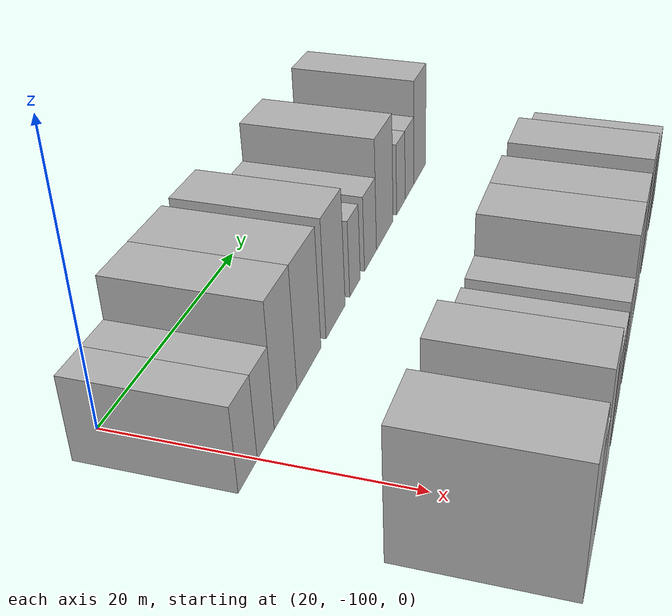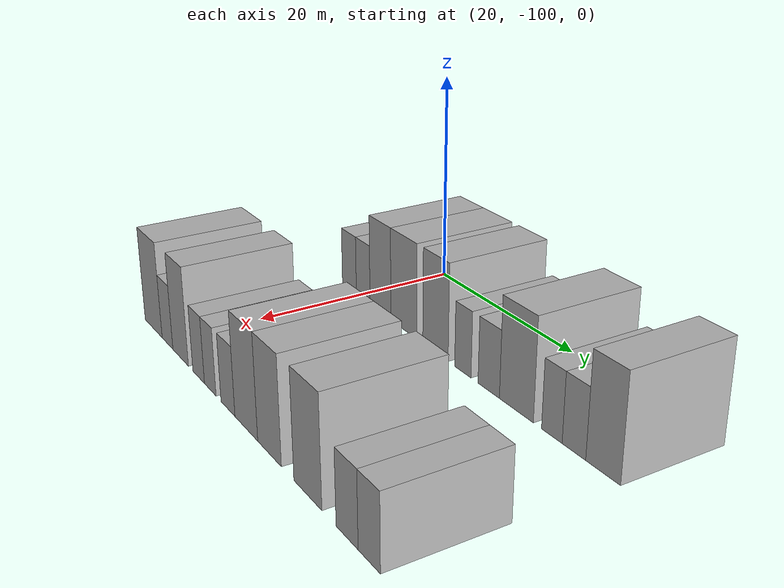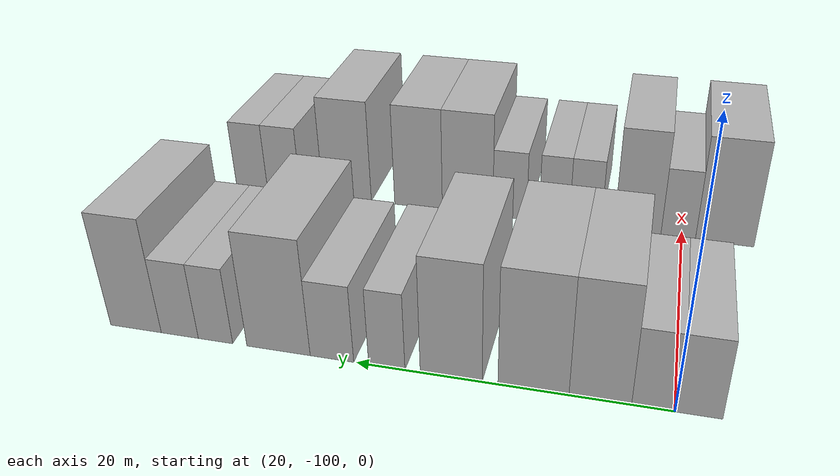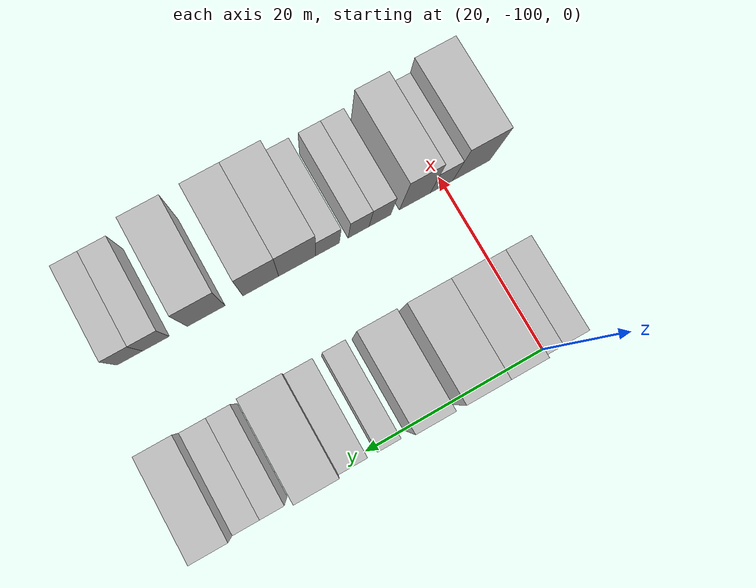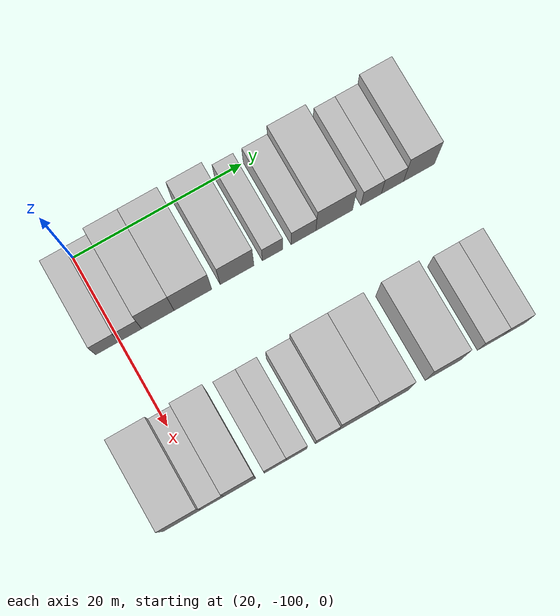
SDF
<sdf version="1.6">
 <world name="default">
  <model name="building_19">
   <static>1</static>
   <pose>25.0000 -101.4165 0 0.000000 0.000000 0.000000</pose>
   <link name="link">
    <pose>0 0 3.00 0 0 0</pose>
    <collision name="collision"><geometry><box><size>10.0000 2.7549 6.0000</size></box></geometry></collision>
    <visual name="visual">
     <cast_shadows>0</cast_shadows>
     <geometry><box><size>10.0000 2.7549 6.0000</size></box></geometry>
     <material>
      <script>
       <uri>model://HANNAS_wall/materials/scripts</uri>
       <uri>model://HANNAS_wall/materials/textures</uri>
       <name>vrc/HANNAS_wall</name>
      </script>
     </material>
    </visual>
   </link>
  </model>
  <model name="building_20">
   <static>1</static>
   <pose>25.0000 -98.7303 0 0.000000 0.000000 0.000000</pose>
   <link name="link">
    <pose>0 0 3.00 0 0 0</pose>
    <collision name="collision"><geometry><box><size>10.0000 2.6175 6.0000</size></box></geometry></collision>
    <visual name="visual">
     <cast_shadows>0</cast_shadows>
     <geometry><box><size>10.0000 2.6175 6.0000</size></box></geometry>
     <material>
      <script>
       <uri>model://HANNAS_wall/materials/scripts</uri>
       <uri>model://HANNAS_wall/materials/textures</uri>
       <name>vrc/HANNAS_wall</name>
      </script>
     </material>
    </visual>
   </link>
  </model>
  <model name="building_21">
   <static>1</static>
   <pose>25.0000 -95.5214 0 0.000000 0.000000 0.000000</pose>
   <link name="link">
    <pose>0 0 4.50 0 0 0</pose>
    <collision name="collision"><geometry><box><size>10.0000 3.8002 9.0000</size></box></geometry></collision>
    <visual name="visual">
     <cast_shadows>0</cast_shadows>
     <geometry><box><size>10.0000 3.8002 9.0000</size></box></geometry>
     <material>
      <script>
       <uri>model://HANNAS_wall/materials/scripts</uri>
       <uri>model://HANNAS_wall/materials/textures</uri>
       <name>vrc/HANNAS_wall</name>
      </script>
     </material>
    </visual>
   </link>
  </model>
  <model name="building_22">
   <static>1</static>
   <pose>25.0000 -91.4064 0 0.000000 0.000000 0.000000</pose>
   <link name="link">
    <pose>0 0 4.50 0 0 0</pose>
    <collision name="collision"><geometry><box><size>10.0000 4.4298 9.0000</size></box></geometry></collision>
    <visual name="visual">
     <cast_shadows>0</cast_shadows>
     <geometry><box><size>10.0000 4.4298 9.0000</size></box></geometry>
     <material>
      <script>
       <uri>model://HANNAS_wall/materials/scripts</uri>
       <uri>model://HANNAS_wall/materials/textures</uri>
       <name>vrc/HANNAS_wall</name>
      </script>
     </material>
    </visual>
   </link>
  </model>
  <model name="building_23">
   <static>1</static>
   <pose>25.0000 -86.1940 0 0.000000 0.000000 0.000000</pose>
   <link name="link">
    <pose>0 0 4.50 0 0 0</pose>
    <collision name="collision"><geometry><box><size>10.0000 3.9950 9.0000</size></box></geometry></collision>
    <visual name="visual">
     <cast_shadows>0</cast_shadows>
     <geometry><box><size>10.0000 3.9950 9.0000</size></box></geometry>
     <material>
      <script>
       <uri>model://HANNAS_wall/materials/scripts</uri>
       <uri>model://HANNAS_wall/materials/textures</uri>
       <name>vrc/HANNAS_wall</name>
      </script>
     </material>
    </visual>
   </link>
  </model>
  <model name="building_24">
   <static>1</static>
   <pose>25.0000 -81.9947 0 0.000000 0.000000 0.000000</pose>
   <link name="link">
    <pose>0 0 3.00 0 0 0</pose>
    <collision name="collision"><geometry><box><size>10.0000 2.4037 6.0000</size></box></geometry></collision>
    <visual name="visual">
     <cast_shadows>0</cast_shadows>
     <geometry><box><size>10.0000 2.4037 6.0000</size></box></geometry>
     <material>
      <script>
       <uri>model://HANNAS_wall/materials/scripts</uri>
       <uri>model://HANNAS_wall/materials/textures</uri>
       <name>vrc/HANNAS_wall</name>
      </script>
     </material>
    </visual>
   </link>
  </model>
  <model name="building_25">
   <static>1</static>
   <pose>25.0000 -78.3166 0 0.000000 0.000000 0.000000</pose>
   <link name="link">
    <pose>0 0 3.00 0 0 0</pose>
    <collision name="collision"><geometry><box><size>10.0000 2.9525 6.0000</size></box></geometry></collision>
    <visual name="visual">
     <cast_shadows>0</cast_shadows>
     <geometry><box><size>10.0000 2.9525 6.0000</size></box></geometry>
     <material>
      <script>
       <uri>model://HANNAS_wall/materials/scripts</uri>
       <uri>model://HANNAS_wall/materials/textures</uri>
       <name>vrc/HANNAS_wall</name>
      </script>
     </material>
    </visual>
   </link>
  </model>
  <model name="building_26">
   <static>1</static>
   <pose>25.0000 -74.6427 0 0.000000 0.000000 0.000000</pose>
   <link name="link">
    <pose>0 0 4.50 0 0 0</pose>
    <collision name="collision"><geometry><box><size>10.0000 4.3952 9.0000</size></box></geometry></collision>
    <visual name="visual">
     <cast_shadows>0</cast_shadows>
     <geometry><box><size>10.0000 4.3952 9.0000</size></box></geometry>
     <material>
      <script>
       <uri>model://HANNAS_wall/materials/scripts</uri>
       <uri>model://HANNAS_wall/materials/textures</uri>
       <name>vrc/HANNAS_wall</name>
      </script>
     </material>
    </visual>
   </link>
  </model>
  <model name="building_27">
   <static>1</static>
   <pose>25.0000 -70.2161 0 0.000000 0.000000 0.000000</pose>
   <link name="link">
    <pose>0 0 3.00 0 0 0</pose>
    <collision name="collision"><geometry><box><size>10.0000 2.4581 6.0000</size></box></geometry></collision>
    <visual name="visual">
     <cast_shadows>0</cast_shadows>
     <geometry><box><size>10.0000 2.4581 6.0000</size></box></geometry>
     <material>
      <script>
       <uri>model://HANNAS_wall/materials/scripts</uri>
       <uri>model://HANNAS_wall/materials/textures</uri>
       <name>vrc/HANNAS_wall</name>
      </script>
     </material>
    </visual>
   </link>
  </model>
  <model name="building_28">
   <static>1</static>
   <pose>25.0000 -67.6482 0 0.000000 0.000000 0.000000</pose>
   <link name="link">
    <pose>0 0 3.00 0 0 0</pose>
    <collision name="collision"><geometry><box><size>10.0000 2.6778 6.0000</size></box></geometry></collision>
    <visual name="visual">
     <cast_shadows>0</cast_shadows>
     <geometry><box><size>10.0000 2.6778 6.0000</size></box></geometry>
     <material>
      <script>
       <uri>model://HANNAS_wall/materials/scripts</uri>
       <uri>model://HANNAS_wall/materials/textures</uri>
       <name>vrc/HANNAS_wall</name>
      </script>
     </material>
    </visual>
   </link>
  </model>
  <model name="building_29">
   <static>1</static>
   <pose>25.0000 -64.4440 0 0.000000 0.000000 0.000000</pose>
   <link name="link">
    <pose>0 0 4.50 0 0 0</pose>
    <collision name="collision"><geometry><box><size>10.0000 3.7306 9.0000</size></box></geometry></collision>
    <visual name="visual">
     <cast_shadows>0</cast_shadows>
     <geometry><box><size>10.0000 3.7306 9.0000</size></box></geometry>
     <material>
      <script>
       <uri>model://HANNAS_wall/materials/scripts</uri>
       <uri>model://HANNAS_wall/materials/textures</uri>
       <name>vrc/HANNAS_wall</name>
      </script>
     </material>
    </visual>
   </link>
  </model>
  <model name="building_114">
   <static>1</static>
   <pose>44.0000 -103.2288 0 0.000000 0.000000 0.000000</pose>
   <link name="link">
    <pose>0 0 4.50 0 0 0</pose>
    <collision name="collision"><geometry><box><size>10.0000 4.3687 9.0000</size></box></geometry></collision>
    <visual name="visual">
     <cast_shadows>0</cast_shadows>
     <geometry><box><size>10.0000 4.3687 9.0000</size></box></geometry>
     <material>
      <script>
       <uri>model://HANNAS_wall/materials/scripts</uri>
       <uri>model://HANNAS_wall/materials/textures</uri>
       <name>vrc/HANNAS_wall</name>
      </script>
     </material>
    </visual>
   </link>
  </model>
  <model name="building_115">
   <static>1</static>
   <pose>44.0000 -99.7299 0 0.000000 0.000000 0.000000</pose>
   <link name="link">
    <pose>0 0 3.00 0 0 0</pose>
    <collision name="collision"><geometry><box><size>10.0000 2.6290 6.0000</size></box></geometry></collision>
    <visual name="visual">
     <cast_shadows>0</cast_shadows>
     <geometry><box><size>10.0000 2.6290 6.0000</size></box></geometry>
     <material>
      <script>
       <uri>model://HANNAS_wall/materials/scripts</uri>
       <uri>model://HANNAS_wall/materials/textures</uri>
       <name>vrc/HANNAS_wall</name>
      </script>
     </material>
    </visual>
   </link>
  </model>
  <model name="building_116">
   <static>1</static>
   <pose>44.0000 -96.6066 0 0.000000 0.000000 0.000000</pose>
   <link name="link">
    <pose>0 0 4.50 0 0 0</pose>
    <collision name="collision"><geometry><box><size>10.0000 3.6176 9.0000</size></box></geometry></collision>
    <visual name="visual">
     <cast_shadows>0</cast_shadows>
     <geometry><box><size>10.0000 3.6176 9.0000</size></box></geometry>
     <material>
      <script>
       <uri>model://HANNAS_wall/materials/scripts</uri>
       <uri>model://HANNAS_wall/materials/textures</uri>
       <name>vrc/HANNAS_wall</name>
      </script>
     </material>
    </visual>
   </link>
  </model>
  <model name="building_117">
   <static>1</static>
   <pose>44.0000 -92.5390 0 0.000000 0.000000 0.000000</pose>
   <link name="link">
    <pose>0 0 3.00 0 0 0</pose>
    <collision name="collision"><geometry><box><size>10.0000 2.5174 6.0000</size></box></geometry></collision>
    <visual name="visual">
     <cast_shadows>0</cast_shadows>
     <geometry><box><size>10.0000 2.5174 6.0000</size></box></geometry>
     <material>
      <script>
       <uri>model://HANNAS_wall/materials/scripts</uri>
       <uri>model://HANNAS_wall/materials/textures</uri>
       <name>vrc/HANNAS_wall</name>
      </script>
     </material>
    </visual>
   </link>
  </model>
  <model name="building_118">
   <static>1</static>
   <pose>44.0000 -90.0744 0 0.000000 0.000000 0.000000</pose>
   <link name="link">
    <pose>0 0 3.00 0 0 0</pose>
    <collision name="collision"><geometry><box><size>10.0000 2.4119 6.0000</size></box></geometry></collision>
    <visual name="visual">
     <cast_shadows>0</cast_shadows>
     <geometry><box><size>10.0000 2.4119 6.0000</size></box></geometry>
     <material>
      <script>
       <uri>model://HANNAS_wall/materials/scripts</uri>
       <uri>model://HANNAS_wall/materials/textures</uri>
       <name>vrc/HANNAS_wall</name>
      </script>
     </material>
    </visual>
   </link>
  </model>
  <model name="building_119">
   <static>1</static>
   <pose>44.0000 -86.5022 0 0.000000 0.000000 0.000000</pose>
   <link name="link">
    <pose>0 0 3.00 0 0 0</pose>
    <collision name="collision"><geometry><box><size>10.0000 2.7326 6.0000</size></box></geometry></collision>
    <visual name="visual">
     <cast_shadows>0</cast_shadows>
     <geometry><box><size>10.0000 2.7326 6.0000</size></box></geometry>
     <material>
      <script>
       <uri>model://HANNAS_wall/materials/scripts</uri>
       <uri>model://HANNAS_wall/materials/textures</uri>
       <name>vrc/HANNAS_wall</name>
      </script>
     </material>
    </visual>
   </link>
  </model>
  <model name="building_120">
   <static>1</static>
   <pose>44.0000 -83.0468 0 0.000000 0.000000 0.000000</pose>
   <link name="link">
    <pose>0 0 4.50 0 0 0</pose>
    <collision name="collision"><geometry><box><size>10.0000 4.1783 9.0000</size></box></geometry></collision>
    <visual name="visual">
     <cast_shadows>0</cast_shadows>
     <geometry><box><size>10.0000 4.1783 9.0000</size></box></geometry>
     <material>
      <script>
       <uri>model://HANNAS_wall/materials/scripts</uri>
       <uri>model://HANNAS_wall/materials/textures</uri>
       <name>vrc/HANNAS_wall</name>
      </script>
     </material>
    </visual>
   </link>
  </model>
  <model name="building_121">
   <static>1</static>
   <pose>44.0000 -78.9485 0 0.000000 0.000000 0.000000</pose>
   <link name="link">
    <pose>0 0 4.50 0 0 0</pose>
    <collision name="collision"><geometry><box><size>10.0000 4.0183 9.0000</size></box></geometry></collision>
    <visual name="visual">
     <cast_shadows>0</cast_shadows>
     <geometry><box><size>10.0000 4.0183 9.0000</size></box></geometry>
     <material>
      <script>
       <uri>model://HANNAS_wall/materials/scripts</uri>
       <uri>model://HANNAS_wall/materials/textures</uri>
       <name>vrc/HANNAS_wall</name>
      </script>
     </material>
    </visual>
   </link>
  </model>
  <model name="building_122">
   <static>1</static>
   <pose>44.0000 -72.8353 0 0.000000 0.000000 0.000000</pose>
   <link name="link">
    <pose>0 0 4.50 0 0 0</pose>
    <collision name="collision"><geometry><box><size>10.0000 4.2082 9.0000</size></box></geometry></collision>
    <visual name="visual">
     <cast_shadows>0</cast_shadows>
     <geometry><box><size>10.0000 4.2082 9.0000</size></box></geometry>
     <material>
      <script>
       <uri>model://HANNAS_wall/materials/scripts</uri>
       <uri>model://HANNAS_wall/materials/textures</uri>
       <name>vrc/HANNAS_wall</name>
      </script>
     </material>
    </visual>
   </link>
  </model>
  <model name="building_123">
   <static>1</static>
   <pose>44.0000 -67.2592 0 0.000000 0.000000 0.000000</pose>
   <link name="link">
    <pose>0 0 3.00 0 0 0</pose>
    <collision name="collision"><geometry><box><size>10.0000 2.9440 6.0000</size></box></geometry></collision>
    <visual name="visual">
     <cast_shadows>0</cast_shadows>
     <geometry><box><size>10.0000 2.9440 6.0000</size></box></geometry>
     <material>
      <script>
       <uri>model://HANNAS_wall/materials/scripts</uri>
       <uri>model://HANNAS_wall/materials/textures</uri>
       <name>vrc/HANNAS_wall</name>
      </script>
     </material>
    </visual>
   </link>
  </model>
  <model name="building_124">
   <static>1</static>
   <pose>44.0000 -64.3868 0 0.000000 0.000000 0.000000</pose>
   <link name="link">
    <pose>0 0 3.00 0 0 0</pose>
    <collision name="collision"><geometry><box><size>10.0000 2.8008 6.0000</size></box></geometry></collision>
    <visual name="visual">
     <cast_shadows>0</cast_shadows>
     <geometry><box><size>10.0000 2.8008 6.0000</size></box></geometry>
     <material>
      <script>
       <uri>model://HANNAS_wall/materials/scripts</uri>
       <uri>model://HANNAS_wall/materials/textures</uri>
       <name>vrc/HANNAS_wall</name>
      </script>
     </material>
    </visual>
   </link>
  </model>
 </world>
</sdf>
